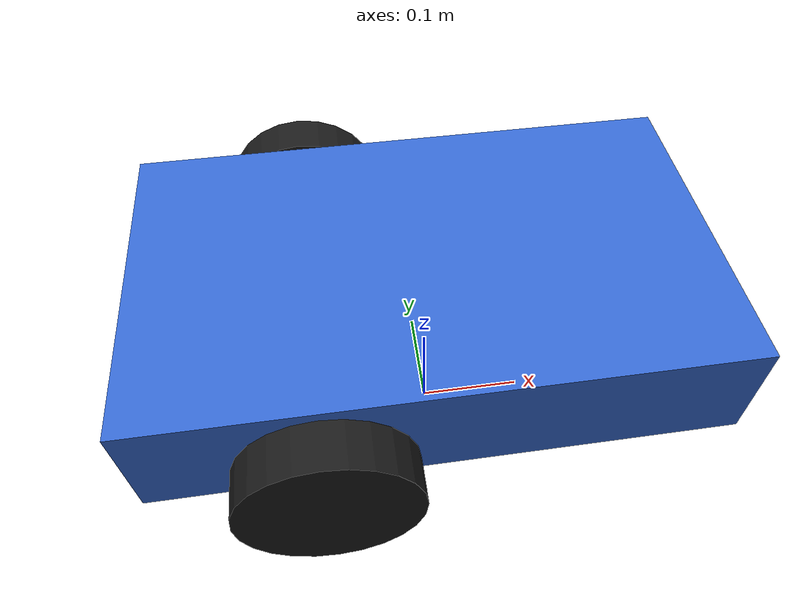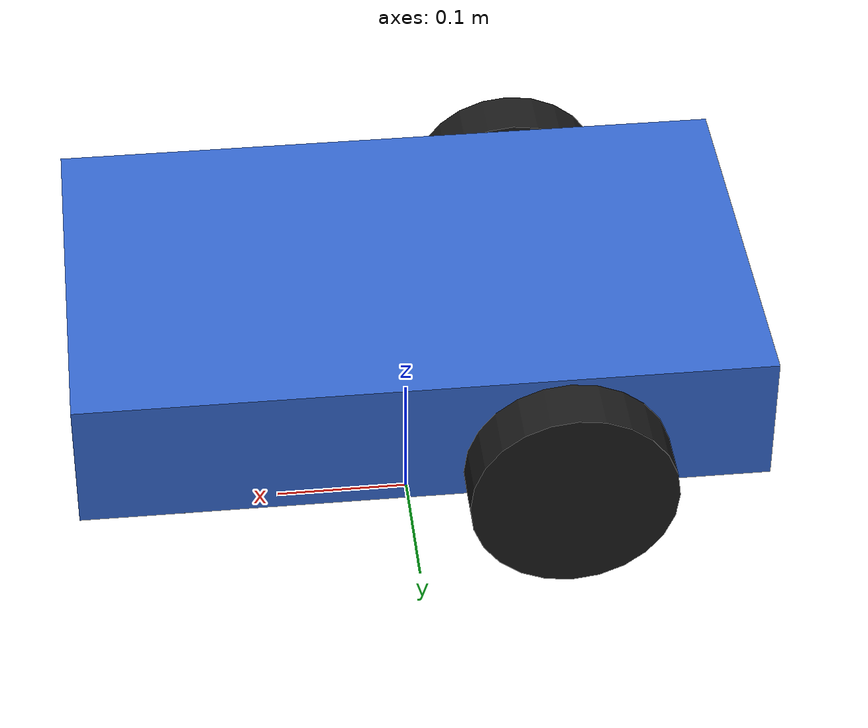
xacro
<?xml version="1.0"?>
<!--
    xacro 优化：车体 + 驱动轮 + 支撑轮，使用属性、宏与文件包含组织模型。
    演示：xacro 属性(properties) 与 宏(macro)。
-->
<robot name="xacro_car" xmlns:xacro="http://www.ros.org/wiki/xacro">
    <!-- 1.属性定义 -->
    <xacro:property name="wheel_radius" value="0.075"/>
    <xacro:property name="wheel_length" value="0.04"/>
    <xacro:property name="wheel_x" value="-0.1"/>
    <xacro:property name="wheel_y" value="0.175"/>
    <xacro:property name="wheel_z" value="0.075"/>

    <!-- 2.宏定义：驱动轮 -->
    <xacro:macro name="wheel_macro" params="wheel_name flag y_offset">
        <link name="${wheel_name}_wheel">
            <visual>
                <geometry>
                    <cylinder radius="${wheel_radius}" length="${wheel_length}"/>
                </geometry>
                <origin xyz="0 0 0" rpy="1.5708 0 0"/>
                <material name="black">
                    <color rgba="0.1 0.1 0.1 1.0"/>
                </material>
            </visual>
        </link>
        <joint name="${wheel_name}_wheel2base_link" type="continuous">
            <parent link="base_link"/>
            <child link="${wheel_name}_wheel"/>
            <origin xyz="${wheel_x} ${flag * y_offset} ${wheel_z}" rpy="0 0 0"/>
            <axis xyz="0 1 0"/>
        </joint>
    </xacro:macro>

    <!-- 3.根坐标系 -->
    <link name="base_footprint">
        <visual>
            <geometry>
                <sphere radius="0.001"/>
            </geometry>
        </visual>
    </link>

    <!-- 4.车体 -->
    <link name="base_link">
        <visual>
            <geometry>
                <box size="0.5 0.3 0.1"/>
            </geometry>
            <origin xyz="0 0 0.1" rpy="0 0 0"/>
            <material name="blue">
                <color rgba="0.2 0.4 0.8 1.0"/>
            </material>
        </visual>
    </link>
    <joint name="base_link2base_footprint" type="fixed">
        <parent link="base_footprint"/>
        <child link="base_link"/>
        <origin xyz="0 0 0.075" rpy="0 0 0"/>
    </joint>

    <!-- 5.调用宏生成左右驱动轮 -->
    <xacro:wheel_macro wheel_name="left" flag="1" y_offset="${wheel_y}"/>
    <xacro:wheel_macro wheel_name="right" flag="-1" y_offset="${wheel_y}"/>

    <!-- 6.支撑轮 -->
    <link name="front_wheel">
        <visual>
            <geometry>
                <sphere radius="0.0375"/>
            </geometry>
            <material name="gray">
                <color rgba="0.5 0.5 0.5 1.0"/>
            </material>
        </visual>
    </link>
    <joint name="front_wheel2base_link" type="fixed">
        <parent link="base_link"/>
        <child link="front_wheel"/>
        <origin xyz="0.175 0 -0.0375" rpy="0 0 0"/>
    </joint>
</robot>
